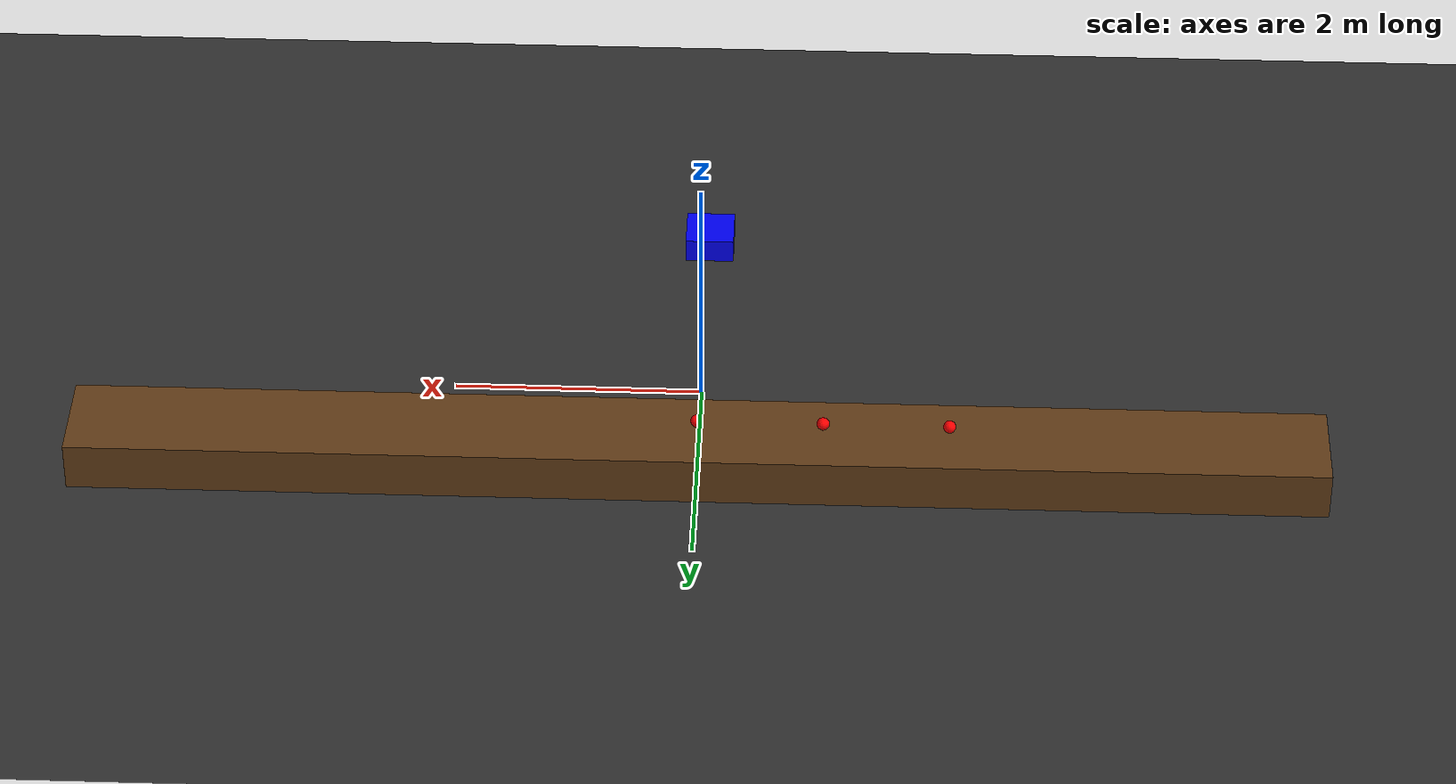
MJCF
<mujoco model="ridge_plantation">
    <compiler angle="degree" coordinate="local"/>
    <option timestep="0.01" gravity="0 0 -9.8"/>

    <asset>
        <material name="ground_mat" rgba="0.2 0.2 0.2 1"/>
        <material name="soil_mat" rgba="0.4 0.25 0.1 1"/>
        <material name="berry_mat" rgba="1 0 0 1"/>
    </asset>

    <worldbody>
        <!-- Single light for scene -->
        <light pos="0 1 2" dir="0 0 -1" diffuse="1 1 1"/>

        <!-- Main camera looking at ridge -->
        <camera name="main_cam" pos="0 -4 3" euler="30 0 0"/>

        <!-- Ground -->
        <geom type="plane" size="10 10 0.1" material="ground_mat"/>

        <!-- Soil ridge -->
        <geom type="box" size="5 0.4 0.2" pos="0 1 0.2" material="soil_mat"/>

        <!-- Strawberries -->
        <body name="berry1" pos="-2 1 0.5">
            <geom type="sphere" size="0.05" material="berry_mat"/>
        </body>

        <body name="berry2" pos="-1 1 0.5">
            <geom type="sphere" size="0.05" material="berry_mat"/>
        </body>

        <body name="berry3" pos="0 1 0.5">
            <geom type="sphere" size="0.05" material="berry_mat"/>
        </body>

        <!-- Simple robot base -->
        <body name="robot" pos="0 -2 0.1">
            <geom type="box" size="0.2 0.2 0.1" rgba="0 0 1 1"/>

            <joint name="x" type="slide" axis="1 0 0"/>
            <joint name="y" type="slide" axis="0 1 0"/>
        </body>

    </worldbody>

    <actuator>
        <motor joint="x" ctrlrange="-1 1"/>
        <motor joint="y" ctrlrange="-1 1"/>
    </actuator>

</mujoco>
